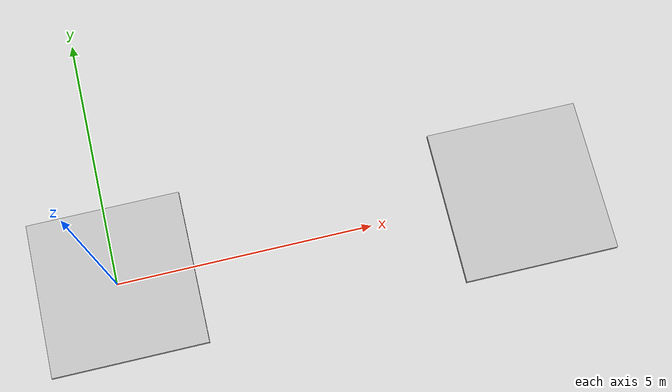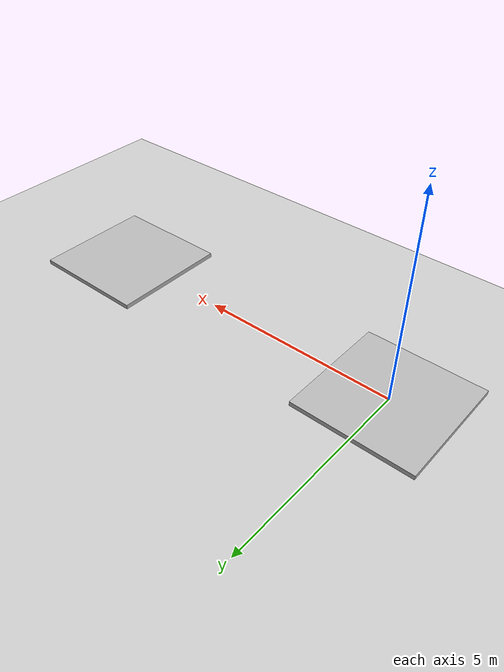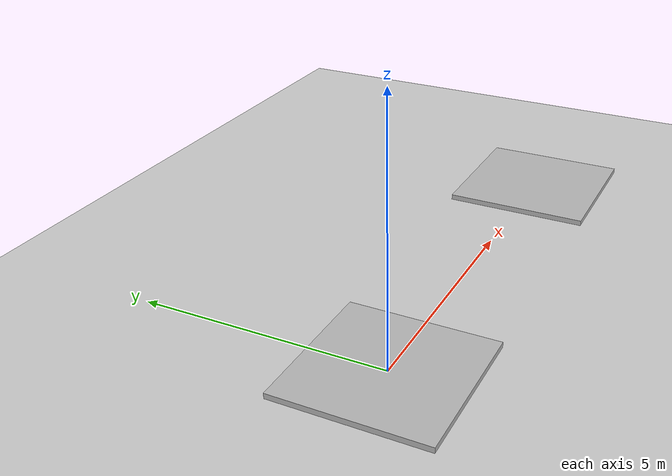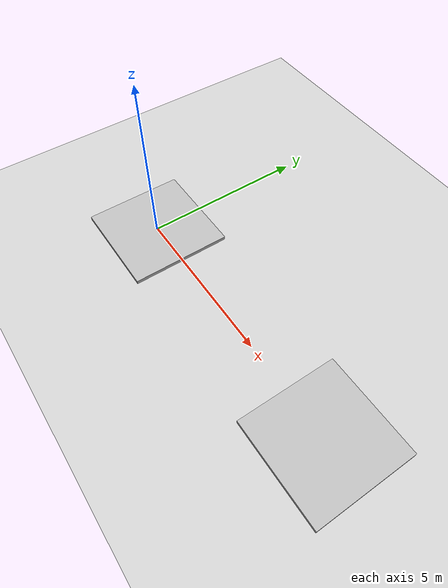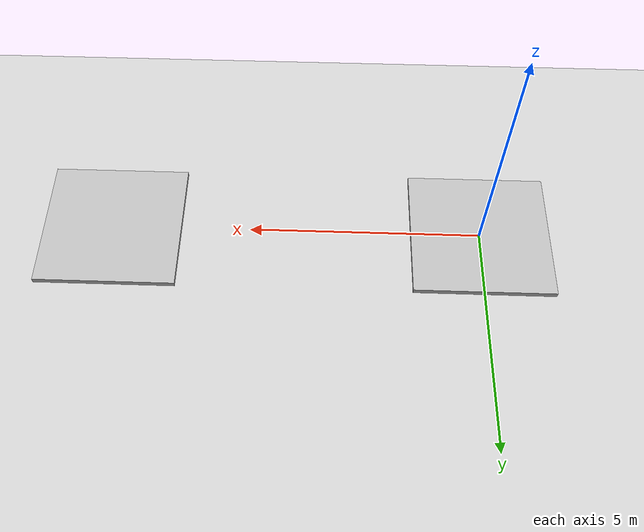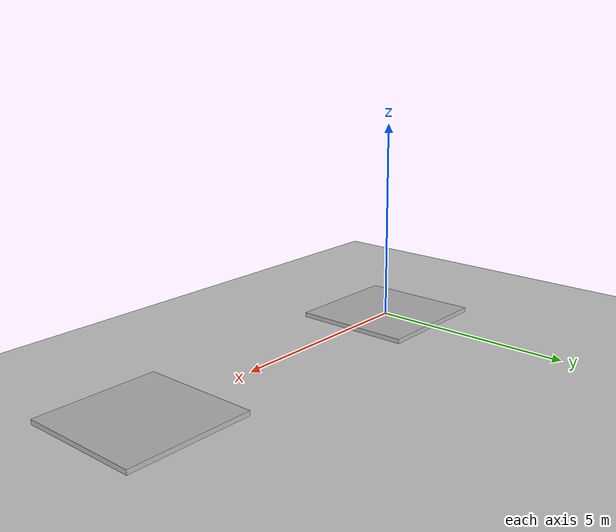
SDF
<?xml version="1.0"?>
<sdf version="1.9">
  <world name="landing_test">

    <!-- Core systems -->
    <plugin filename="gz-sim-physics-system"           name="gz::sim::systems::Physics"/>
    <plugin filename="gz-sim-scene-broadcaster-system" name="gz::sim::systems::SceneBroadcaster"/>
    <plugin filename="gz-sim-sensors-system"           name="gz::sim::systems::Sensors"/>
    <plugin filename="gz-sim-navsat-system"            name="gz::sim::systems::NavSat"/>
    <plugin filename="gz-sim-imu-system"               name="gz::sim::systems::Imu"/>
    <plugin filename="gz-sim-magnetometer-system"      name="gz::sim::systems::Magnetometer"/>

    <!-- WGS84 origin for GPS -->
    <spherical_coordinates>
      <surface_model>EARTH_WGS84</surface_model>
      <latitude_deg>37.4275</latitude_deg>
      <longitude_deg>-122.1697</longitude_deg>
      <elevation>30.0</elevation>
      <heading_deg>0</heading_deg>
    </spherical_coordinates>

    <!-- Directional light with a UNIQUE name -->
    <light type="directional" name="sun_main">
      <cast_shadows>true</cast_shadows>
      <pose>0 0 10 0 0 0</pose>
      <diffuse>1 1 1 1</diffuse>
      <specular>0.5 0.5 0.5 1</specular>
      <attenuation>
        <range>1000</range><constant>0.9</constant><linear>0.01</linear><quadratic>0.001</quadratic>
      </attenuation>
      <direction>-0.5 0.5 -1</direction>
    </light>

    <!-- Ground plane -->
    <include><uri>model://ground_plane</uri></include>

    <!-- Pads -->
    <model name="landing_pad_1">
      <static>true</static><pose>0 0 0 0 0 0</pose>
      <link name="pad">
        <visual name="v"><geometry><box><size>3 3 0.2</size></box></geometry></visual>
        <collision name="c"><geometry><box><size>3 3 0.2</size></box></geometry></collision>
      </link>
    </model>

    <model name="landing_pad_2">
      <static>true</static><pose>8 0 0 0 0 0</pose>
      <link name="pad">
        <visual name="v"><geometry><box><size>3 3 0.2</size></box></geometry></visual>
        <collision name="c"><geometry><box><size>3 3 0.2</size></box></geometry></collision>
      </link>
    </model>

    <!-- Sensor mast with RGB, depth, lidar, IMU, mag, GPS -->
    <include>
      <uri>model://ns_sensor_mast</uri>
      <pose>2 0 1.2 0 0 0</pose>
    </include>

  </world>
</sdf>

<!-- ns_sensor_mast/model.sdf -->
<sdf version="1.9">
  <model name="ns_sensor_mast">
    <static>true</static>
    <link name="mast">
      <pose>0 0 0 0 0 0</pose>

      <!-- ===== RGB camera (your working pattern) ===== -->
      <sensor name="rgb_cam" type="camera">
        <topic>ns_rgb/image</topic>
        <update_rate>20</update_rate>
        <camera>
          <horizontal_fov>1.047</horizontal_fov>
          <image><width>1280</width><height>720</height><format>R8G8B8</format></image>
          <clip><near>0.05</near><far>100</far></clip>
        </camera>
        <always_on>1</always_on>
        <visualize>false</visualize>
      </sensor>

      <!-- ===== Depth camera (publishes depth_image; we’ll also bridge CameraInfo) ===== -->
      <sensor name="depth_cam" type="depth">
        <topic>ns_depth/depth_image</topic>
        <update_rate>20</update_rate>
        <camera>
          <horizontal_fov>1.047</horizontal_fov>
          <image><width>640</width><height>480</height><format>L16</format></image>
          <clip><near>0.1</near><far>30</far></clip>
        </camera>
        <always_on>1</always_on>
        <visualize>false</visualize>
      </sensor>

      <!-- ===== 2D GPU Lidar (official example structure) ===== -->
      <sensor name="front_lidar" type="gpu_lidar">
        <topic>ns_lidar</topic>
        <update_rate>15</update_rate>
        <ray>
          <scan>
            <horizontal>
              <samples>720</samples>
              <resolution>1</resolution>
              <min_angle>-1.57</min_angle>
              <max_angle>1.57</max_angle>
            </horizontal>
            <vertical>
              <samples>1</samples>
              <resolution>1</resolution>
              <min_angle>0</min_angle>
              <max_angle>0</max_angle>
            </vertical>
          </scan>
          <range><min>0.08</min><max>40.0</max><resolution>0.01</resolution></range>
        </ray>
        <always_on>1</always_on>
        <visualize>false</visualize>
      </sensor>

      <!-- ===== IMU (official tutorial style) ===== -->
      <sensor name="imu" type="imu">
        <topic>ns/imu</topic>
        <update_rate>100</update_rate>
        <always_on>1</always_on>
        <visualize>false</visualize>
      </sensor>

      <!-- ===== Magnetometer ===== -->
      <sensor name="mag" type="magnetometer">
        <topic>ns/mag</topic>
        <update_rate>50</update_rate>
        <always_on>1</always_on>
        <visualize>false</visualize>
      </sensor>

      <!-- ===== NavSat (GPS); requires world spherical_coordinates + NavSat system ===== -->
      <sensor name="gps" type="navsat">
        <topic>ns/navsat</topic>
        <update_rate>5</update_rate>
        <always_on>1</always_on>
        <visualize>false</visualize>
        <navsat>
          <position_sensing>
            <horizontal><noise type="gaussian"><mean>0.0</mean><stddev>1.5</stddev></noise></horizontal>
            <vertical><noise type="gaussian"><mean>0.0</mean><stddev>2.5</stddev></noise></vertical>
          </position_sensing>
          <velocity_sensing>
            <horizontal><noise type="gaussian"><mean>0.0</mean><stddev>0.3</stddev></noise></horizontal>
            <vertical><noise type="gaussian"><mean>0.0</mean><stddev>0.5</stddev></noise></vertical>
          </velocity_sensing>
        </navsat>
      </sensor>

    </link>
  </model>
</sdf>
